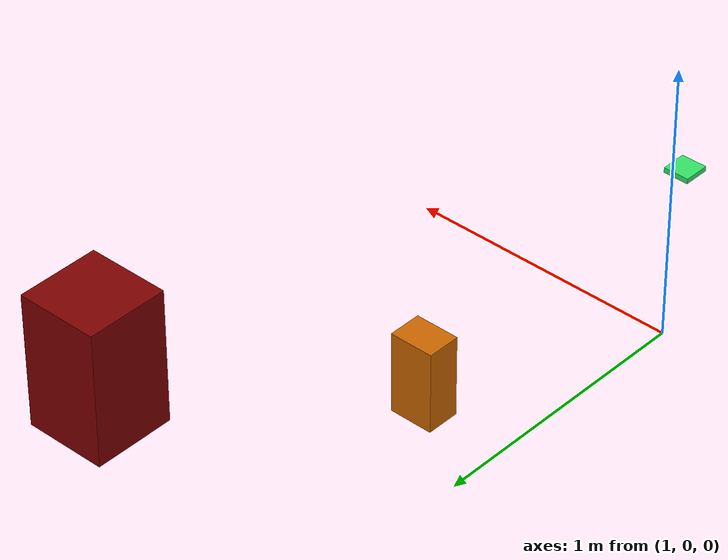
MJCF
<mujoco model="hose_obstacles">
    <worldbody>
        <body name="hose_obstacles" pos="0 0 0">
            <body name="vacuum" pos="2.0 1.5 0.0">
                <geom name="vacuum" type="box" pos="0 0 0.25" size="0.15 0.15 0.25" rgba="0.5 0 0 1"/>
            </body>
            <body name="attach" pos="2.0 1.33 0.25">
                <geom name="attach" type="box" size="0.005 0.005 0.005" rgba="0.5 0 0 1"/>
            </body>
            <body name="obstacle">
                <geom name="obstacle" type="box" pos="1.3 0.8 0.15" size="0.08 0.06 0.15" rgba="0.8 0.4 0 1"/>
            </body>
            <body name="mess" pos="1.5 -0.75 0">
                <geom name="mess" type="box" pos="0 0 0.0" size="0.05 0.05 0.01" rgba="0.2 0.9 0.4 1"/>
            </body>
        </body>
    </worldbody>
</mujoco>
